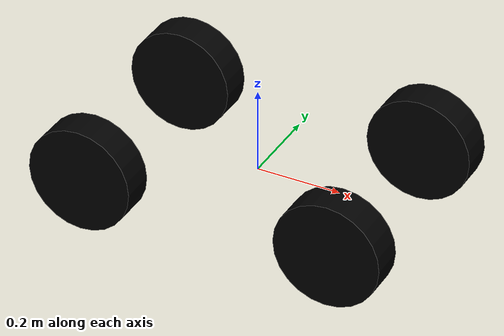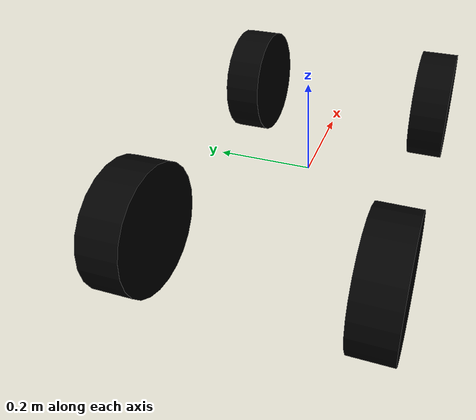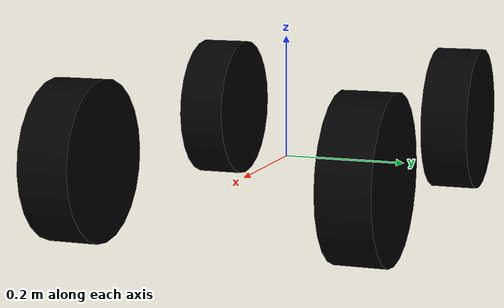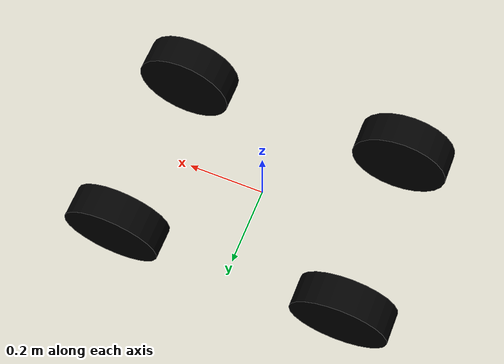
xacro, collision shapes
<?xml version="1.0" encoding="utf-8"?>

<robot name="fw_max" xmlns:xacro="http://www.ros.org/wiki/xacro">

    <link name="base_footprint">
    </link>

    <link name="base_link">
    <visual>
        <origin xyz="0 0 0.1" rpy="0 0 0"/>  <!-- Adjust height as needed -->
        <geometry>
        <box size="0.6 0.4 0.15"/>         <!-- Length, Width, Height in meters -->
        </geometry>
        <material name="Gray">
        <color rgba="0.5 0.5 0.5 1.0"/>
        </material>
    </visual>

        <inertial>
        <origin xyz="0 0 0" />
        <mass value="75" />
        <inertia
            ixx="2.8658" ixy="0" ixz="0"
            iyy="6.7327" iyz="0"
            izz="7.6506"
        />
        </inertial>
    </link>

    <joint name="base_link2base_footprint" type="fixed">
        <parent link="base_footprint" />
        <child link="base_link"/>
        <origin xyz="0 0 0.032" />
    </joint>

    <link name="left_steering_hinge">
        <visual>
            <geometry><cylinder radius="0.02" length="0.005" /></geometry>
            <origin xyz="0 0 0" rpy="1.57 0 0" />
            <material name="black"><color rgba="0.0 0.0 0.0 1.0" /></material>
        </visual>
        <collision>
            <geometry><cylinder radius="0.01" length="0.005" /></geometry>
            <origin xyz="0.0 0.0 0.0" rpy="1.57 0.0 0.0" />
        </collision>
        <inertial>
            <origin xyz="0 0 0" />
            <mass value="1" />
            <inertia ixx="2.7E-05" ixy="0" ixz="0" iyy="2.7E-05" iyz="0" izz="5E-05" />
        </inertial>
    </link>
    <joint name="left_steering_hinge_joint" type="revolute">
        <parent link="base_link" />
        <child link="left_steering_hinge" />
        <origin xyz="0.3 0.225 0" />
        <axis xyz="0 0 1" />
        <limit lower="-3.14" upper="3.14" effort="50.0" velocity="50.0"/>
    </joint>
    <transmission name="left_steering_hinge_trans">
        <type>transmission_interface/SimpleTransmission</type>
        <joint name="left_steering_hinge_joint">
            <hardwareInterface>position</hardwareInterface>
        </joint>
        <actuator name="left_steering_hinge_motor">
            <mechanicalReduction>1</mechanicalReduction>
        </actuator>
    </transmission>

    <link name="left_front_wheel">
        <visual><geometry><mesh filename="file://$(find ackerman_description)/meshes/fw-max-luntai.STL" scale="1 1 1"/></geometry>
            <origin xyz="0.135 0.055 0.135" rpy="0 3.14 1.57" />
            <material name="black"><color rgba="0.0 0.0 0.0 1.0" /></material>
        </visual>
        <collision><geometry><cylinder radius="0.125" length="0.08" /></geometry>
            <origin xyz="0.0 0.0 0.0" rpy="1.57 0.0 0.0" />
        </collision>
        <inertial>
            <origin xyz="0 0 0" />
            <mass value="1.0" />
            <inertia ixx="0.006040" ixy="0" ixz="0" iyy="0.006040" iyz="0" izz="0.007812" />
        </inertial>
    </link>
    <joint name="left_front_wheel_joint" type="continuous">
        <parent link="left_steering_hinge" />
        <child link="left_front_wheel" />
        <origin xyz="0 0 0" />
        <axis xyz="0 1 0" />
        <limit effort="10" velocity="1000" />
    </joint>
    <transmission name="left_front_wheel_trans">
        <type>transmission_interface/SimpleTransmission</type>
        <joint name="left_front_wheel_joint">
            <hardwareInterface>velocity</hardwareInterface>
        </joint>
        <actuator name="left_front_wheel_motor">
            <mechanicalReduction>1</mechanicalReduction>
        </actuator>
    </transmission>

    <link name="right_steering_hinge">
        <visual><geometry><cylinder radius="0.02" length="0.005" /></geometry>
            <origin xyz="0 0 0" rpy="1.57 0 0" />
            <material name="black"><color rgba="0.0 0.0 0.0 1.0" /></material>
        </visual>
        <collision><geometry><cylinder radius="0.01" length="0.005" /></geometry>
            <origin xyz="0.0 0.0 0.0" rpy="1.57 0.0 0.0" /></collision>
        <inertial><origin xyz="0 0 0" /><mass value="1" />
            <inertia ixx="2.7E-05" ixy="0" ixz="0" iyy="2.7E-05" iyz="0" izz="5E-05" /></inertial>
    </link>
    <joint name="right_steering_hinge_joint" type="revolute">
        <parent link="base_link" />
        <child link="right_steering_hinge" />
        <origin xyz="0.3 -0.225 0" />
        <axis xyz="0 0 1" />
        <limit lower="-3.14" upper="3.14" effort="50.0" velocity="50.0"/>
        <mimic joint="left_steering_hinge_joint" multiplier="1.0" offset="0.0"/>
    </joint>
    <transmission name="right_steering_hinge_trans">
        <type>transmission_interface/SimpleTransmission</type>
        <joint name="right_steering_hinge_joint">
            <hardwareInterface>position</hardwareInterface>
        </joint>
        <actuator name="right_steering_hinge_motor">
            <mechanicalReduction>1</mechanicalReduction>
        </actuator>
    </transmission>

    <link name="right_front_wheel">
        <visual><geometry><mesh filename="file://$(find ackerman_description)/meshes/fw-max-luntai.STL" scale="1 1 1"/></geometry>
            <origin xyz="0.135 -0.055 -0.135" rpy="0 0 1.57" />
            <material name="black"><color rgba="0.0 0.0 0.0 1.0" /></material>
        </visual>
        <collision><geometry><cylinder radius="0.125" length="0.08" /></geometry>
            <origin xyz="0.0 0.0 0.0" rpy="1.57 0.0 0.0" /></collision>
        <inertial>
            <origin xyz="0 0 0" />
            <mass value="1.0" />
            <inertia ixx="0.006040" ixy="0" ixz="0" iyy="0.006040" iyz="0" izz="0.007812" />
        </inertial>
    </link>
    <joint name="right_front_wheel_joint" type="continuous">
        <parent link="right_steering_hinge" />
        <child link="right_front_wheel" />
        <origin xyz="0 0 0" />
        <axis xyz="0 1 0" />
        <limit effort="10" velocity="1000" />
    </joint>
    <transmission name="right_front_wheel_trans">
        <type>transmission_interface/SimpleTransmission</type>
        <joint name="right_front_wheel_joint">
            <hardwareInterface>velocity</hardwareInterface>
        </joint>
        <actuator name="right_front_wheel_motor">
            <mechanicalReduction>1</mechanicalReduction>
        </actuator>
    </transmission>

    <link name="rear_left_steering_hinge">
        <visual><geometry><cylinder radius="0.02" length="0.005" /></geometry>
            <origin xyz="0 0 0" rpy="1.57 0 0" />
            <material name="black"><color rgba="0.0 0.0 0.0 1.0" /></material>
        </visual>
        <collision><geometry><cylinder radius="0.01" length="0.005" /></geometry>
            <origin xyz="0.0 0.0 0.0" rpy="1.57 0.0 0.0" /></collision>
        <inertial><origin xyz="0 0 0" /><mass value="1" />
            <inertia ixx="2.7E-05" ixy="0" ixz="0" iyy="2.7E-05" iyz="0" izz="5E-05" /></inertial>
    </link>
    <joint name="rear_left_steering_hinge_joint" type="revolute">
        <parent link="base_link" />
        <child link="rear_left_steering_hinge" />
        <origin xyz="-0.3 0.225 0" />
        <axis xyz="0 0 1" />
        <limit lower="-3.14" upper="3.14" effort="50.0" velocity="50.0"/>
        <mimic joint="left_steering_hinge_joint" multiplier="-1.0" offset="0.0"/>
    </joint>
    <transmission name="rear_left_steering_hinge_trans">
        <type>transmission_interface/SimpleTransmission</type>
        <joint name="rear_left_steering_hinge_joint">
            <hardwareInterface>position</hardwareInterface>
        </joint>
        <actuator name="rear_left_steering_hinge_motor">
            <mechanicalReduction>1</mechanicalReduction>
        </actuator>
    </transmission>

    <link name="left_rear_wheel">
        <visual><geometry><mesh filename="file://$(find ackerman_description)/meshes/fw-max-luntai.STL" scale="1 1 1"/></geometry>
            <origin xyz="0.135 0.055 0.135" rpy="0 3.14 1.57" />
            <material name="black"><color rgba="0.0 0.0 0.0 1.0" /></material>
        </visual>
        <collision><geometry><cylinder radius="0.125" length="0.08" /></geometry>
            <origin xyz="0.0 0.0 0.0" rpy="1.57 0.0 0.0" /></collision>
        <inertial>
            <origin xyz="0 0 0" />
            <mass value="1.0" />
            <inertia ixx="0.006040" ixy="0" ixz="0" iyy="0.006040" iyz="0" izz="0.007812" />
        </inertial>
    </link>
    <joint name="left_rear_wheel_joint" type="continuous">
        <parent link="rear_left_steering_hinge" />
        <child link="left_rear_wheel" />
        <origin xyz="0 0.0 0" />
        <axis xyz="0 1 0" />
        <limit effort="10" velocity="1000" />
    </joint>
    <transmission name="left_rear_wheel_trans">
        <type>transmission_interface/SimpleTransmission</type>
        <joint name="left_rear_wheel_joint">
            <hardwareInterface>velocity</hardwareInterface>
        </joint>
        <actuator name="left_rear_wheel_motor">
            <mechanicalReduction>1</mechanicalReduction>
        </actuator>
    </transmission>

    <link name="rear_right_steering_hinge">
        <visual><geometry><cylinder radius="0.02" length="0.005" /></geometry>
            <origin xyz="0 0 0" rpy="1.57 0 0" />
            <material name="black"><color rgba="0.0 0.0 0.0 1.0" /></material>
        </visual>
        <collision><geometry><cylinder radius="0.01" length="0.005" /></geometry>
            <origin xyz="0.0 0.0 0.0" rpy="1.57 0.0 0.0" /></collision>
        <inertial><origin xyz="0 0 0" /><mass value="1" />
            <inertia ixx="2.7E-05" ixy="0" ixz="0" iyy="2.7E-05" iyz="0" izz="5E-05" /></inertial>
    </link>
    <joint name="rear_right_steering_hinge_joint" type="revolute">
        <parent link="base_link" />
        <child link="rear_right_steering_hinge" />
        <origin xyz="-0.3 -0.225 0" />
        <axis xyz="0 0 1" />
        <limit lower="-3.14" upper="3.14" effort="50.0" velocity="50.0"/>
        <mimic joint="left_steering_hinge_joint" multiplier="-1.0" offset="0.0"/>
    </joint>
    <transmission name="rear_right_steering_hinge_trans">
        <type>transmission_interface/SimpleTransmission</type>
        <joint name="rear_right_steering_hinge_joint">
            <hardwareInterface>position</hardwareInterface>
        </joint>
        <actuator name="rear_right_steering_hinge_motor">
            <mechanicalReduction>1</mechanicalReduction>
        </actuator>
    </transmission>

    <link name="right_rear_wheel">
        <visual><geometry><mesh filename="file://$(find ackerman_description)/meshes/fw-max-luntai.STL" scale="1 1 1"/></geometry>
            <origin xyz="0.135 -0.055 -0.135" rpy="0 0 1.57" />
            <material name="black"><color rgba="0.0 0.0 0.0 1.0" /></material>
        </visual>
        <collision><geometry><cylinder radius="0.125" length="0.08" /></geometry>
            <origin xyz="0.0 0.0 0.0" rpy="1.57 0.0 0.0" /></collision>
        <inertial>
            <origin xyz="0 0 0" />
            <mass value="1.0" />
            <inertia ixx="0.006040" ixy="0" ixz="0" iyy="0.006040" iyz="0" izz="0.007812" />
        </inertial>
    </link>
    <joint name="right_rear_wheel_joint" type="continuous">
        <parent link="rear_right_steering_hinge" />
        <child link="right_rear_wheel" />
        <origin xyz="0 0.0 0" />
        <axis xyz="0 1 0" />
        <limit effort="10" velocity="1000" />
    </joint>
    <transmission name="right_rear_wheel_trans">
        <type>transmission_interface/SimpleTransmission</type>
        <joint name="right_rear_wheel_joint">
            <hardwareInterface>velocity</hardwareInterface>
        </joint>
        <actuator name="right_rear_wheel_motor">
            <mechanicalReduction>1</mechanicalReduction>
        </actuator>
    </transmission>

    <xacro:include filename="$(find ackerman_description)/urdf/fw-max.gazebo.xacro" />

    <ros2_control name="FWMaxRobot" type="system">
        <hardware>
            <plugin>gazebo_ros2_control/GazeboSystem</plugin>
        </hardware>

        <joint name="left_steering_hinge_joint">
            <command_interface name="position"/>
            <state_interface name="position"/>
            <state_interface name="effort"/>
        </joint>
        <joint name="right_steering_hinge_joint">
            <command_interface name="position"/> <state_interface name="position"/>
            <state_interface name="effort"/>
        </joint>
        <joint name="rear_left_steering_hinge_joint">
            <command_interface name="position"/> <state_interface name="position"/>
            <state_interface name="effort"/>
        </joint>
        <joint name="rear_right_steering_hinge_joint">
            <command_interface name="position"/> <state_interface name="position"/>
            <state_interface name="effort"/>
        </joint>

        <joint name="left_front_wheel_joint">
            <command_interface name="velocity"/> <state_interface name="velocity"/>
            <state_interface name="position"/>
            <state_interface name="effort"/>
        </joint>
        <joint name="right_front_wheel_joint">
            <command_interface name="velocity"/> <state_interface name="velocity"/>
            <state_interface name="position"/>
            <state_interface name="effort"/>
        </joint>

        <joint name="left_rear_wheel_joint">
            <command_interface name="velocity"/>
            <state_interface name="velocity"/>
            <state_interface name="position"/>
            <state_interface name="effort"/>
        </joint>
        <joint name="right_rear_wheel_joint">
            <command_interface name="velocity"/>
            <state_interface name="velocity"/>
            <state_interface name="position"/>
            <state_interface name="effort"/>
        </joint>
    </ros2_control>

    <gazebo>
        <plugin filename="libgazebo_ros2_control.so" name="gazebo_ros2_control">
        <robot_param>robot_description</robot_param>
        <robot_param_node>robot_state_publisher</robot_param_node>
        <parameters>$(find ackerman_description)/config/fw_max_controllers.yaml</parameters>
        </plugin>
    </gazebo>

</robot>
